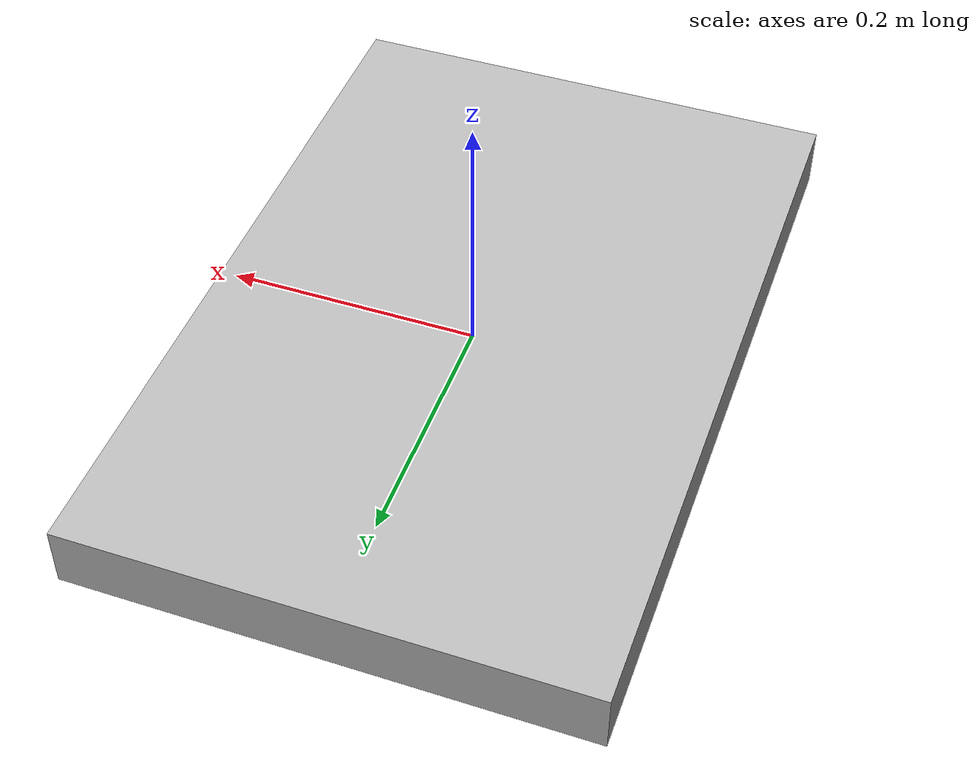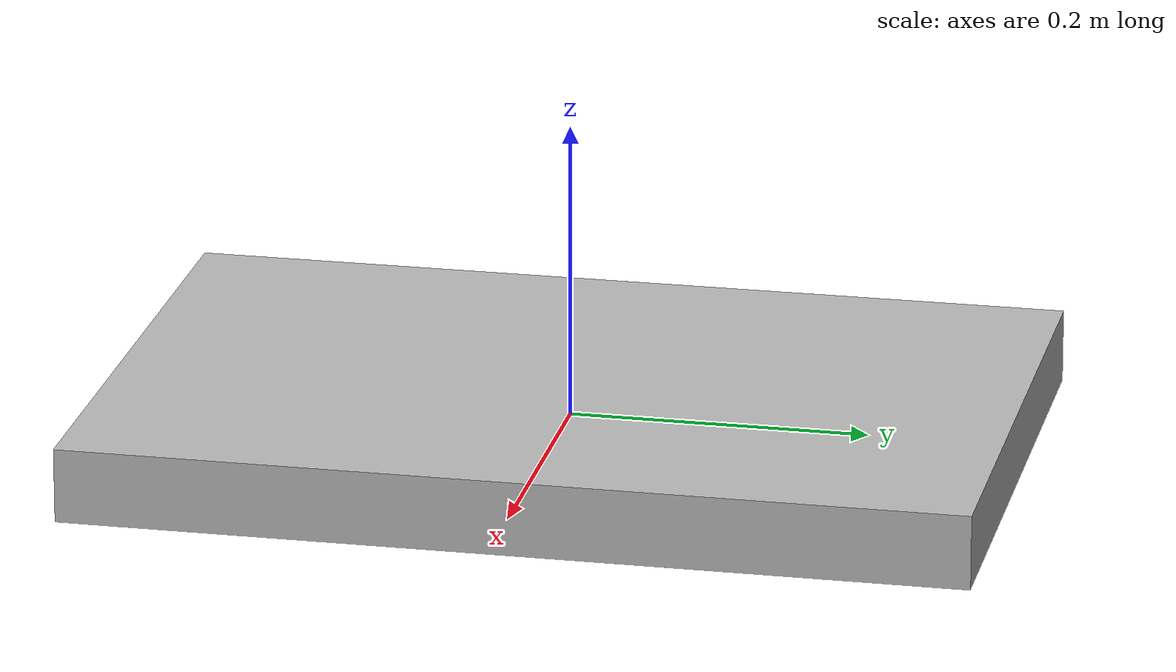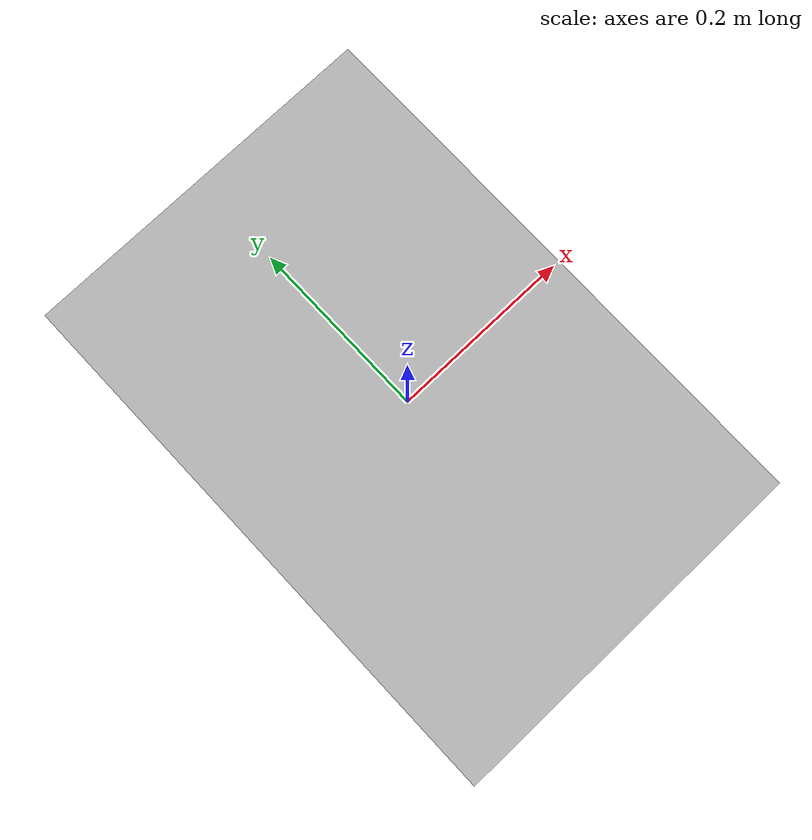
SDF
<?xml version="1.0" ?>
<sdf version="1.5">
  <model name="panel_art">
    <static>true</static>
    <link name="body">
      <pose>0 0 0 0 0 0</pose>
      <visual name="visual">
	<geometry>
	  <box>
	    <size>0.40 0.60 0.05</size>
	  </box>
	</geometry>
	<material>
	  <script>
            <uri>model://panel_art</uri>
            <name>PanelArt/Diffuse</name>
          </script>
	</material>
      </visual>
    </link>
  </model>
</sdf>
